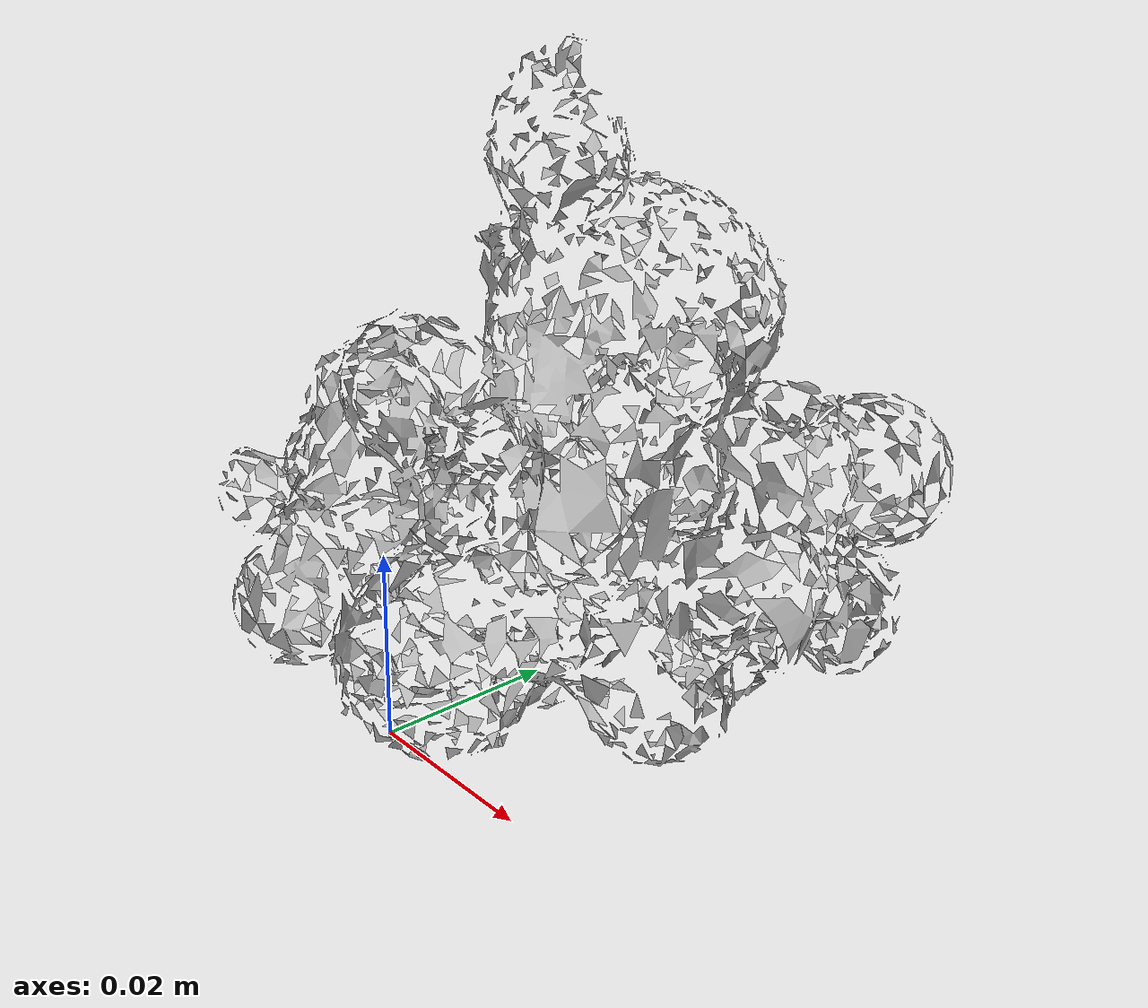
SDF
<?xml version='1.0'?>
<sdf version="1.4">
  <model name="a_marbles">
    <static>false</static>
    <link name="link">
      <inertial>
        <pose>-0.0027500211748439636 0.02916533353054031 0.02215392408992264 -0.6345049586826501 -1.1889933644865458 -1.7236571627100314</pose>
        <mass>0.00010889942293808134</mass>
        <inertia>
          <ixx>5.859517781305911e-08</ixx>
          <ixy>-1.8567684930986821e-25</ixy>
          <ixz>-4.673320500844716e-24</ixz>
          <iyy>4.800912606276797e-08</iyy>
          <iyz>1.4238375619801187e-23</iyz>
          <izz>4.640843674575481e-08</izz>
        </inertia>
      </inertial>
      <collision name="collision">
        <geometry>
          <mesh>
            <!-- Use a downsampled mesh for collisions -->
            <uri>model://063-a_marbles/downsampled.obj</uri>
	        </mesh>
        </geometry>
        <surface>
      </surface>
      </collision>
      <visual name="visual">
        <geometry>
          <mesh>
            <uri>model://063-a_marbles/google_16k/textured.obj</uri>
	        </mesh>
        </geometry>
        <material>
          <script>
            <uri>model://063-a_marbles/a_marbles.material</uri>
            <name>a_marbles</name>
          </script>
        </material>
      </visual>
    </link>
  </model>
</sdf>
